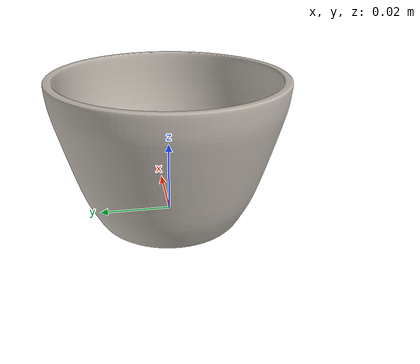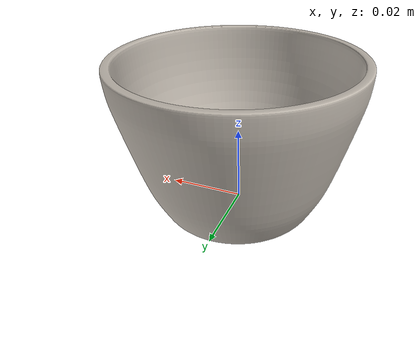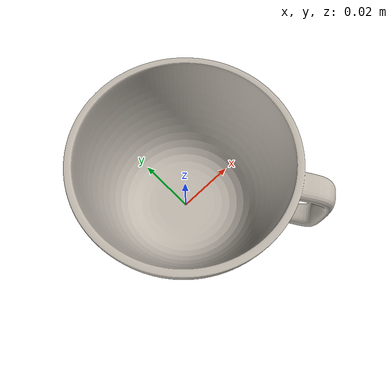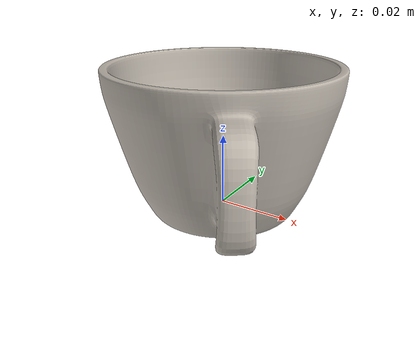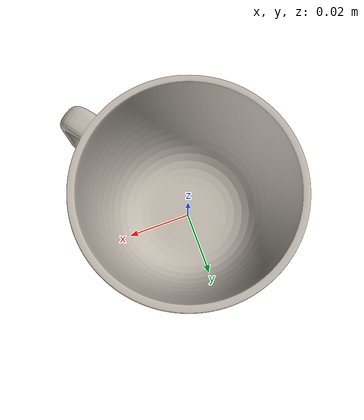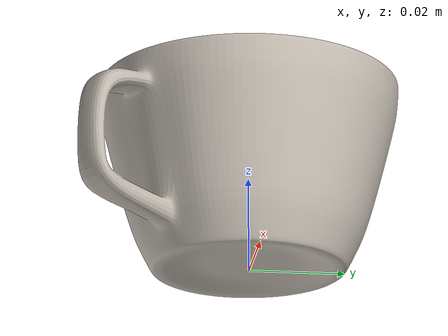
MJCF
<mujoco model="mug">
  <asset>
    <mesh file="meshes/teamug.obj" name="mug_mesh"/>
    <texture type="2d" file="../textures/ceramic.png" name="tex-ceramic"/>
    <material name="ceramic" reflectance="0.3" texrepeat="3 3" texture="tex-ceramic" texuniform="true"/>
  </asset>
  <worldbody>
    <body>
      <body name="object">
        <geom pos="0 0 0" mesh="mug_mesh" type="mesh" solimp="0.998 0.998 0.001" solref="0.001 1" density="100" friction="0.95 0.3 0.1" material="ceramic" contype="0" conaffinity="0" group="1"/>
        <geom pos="0 0 0" mesh="mug_mesh" type="mesh" solimp="0.998 0.998 0.001" solref="0.001 1" density="100" friction="0.95 0.3 0.1" material="ceramic" group="0"/>
      </body>
      <site rgba="0 0 0 0" size="0.005" pos="0 0 0" name="bottom_site"/>
      <site rgba="0 0 0 0" size="0.005" pos="0 0.00 0.04" name="top_site"/>
      <site rgba="0 0 0 0" size="0.005" pos="0.032 0.034 0" name="horizontal_radius_site"/>
    </body>
  </worldbody>
</mujoco>
